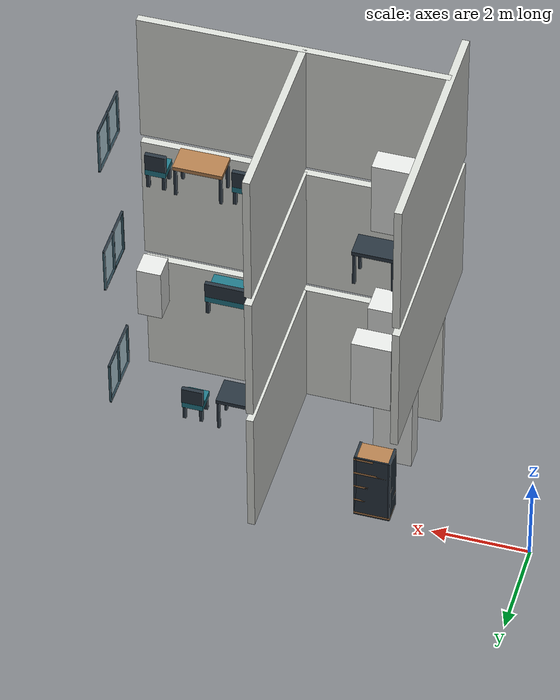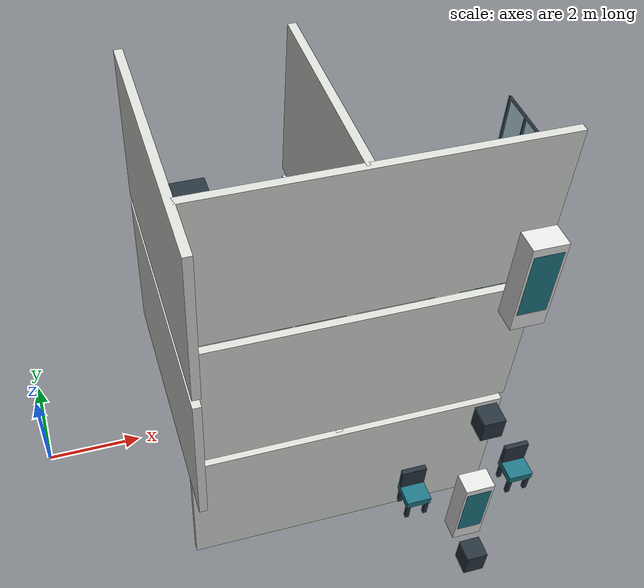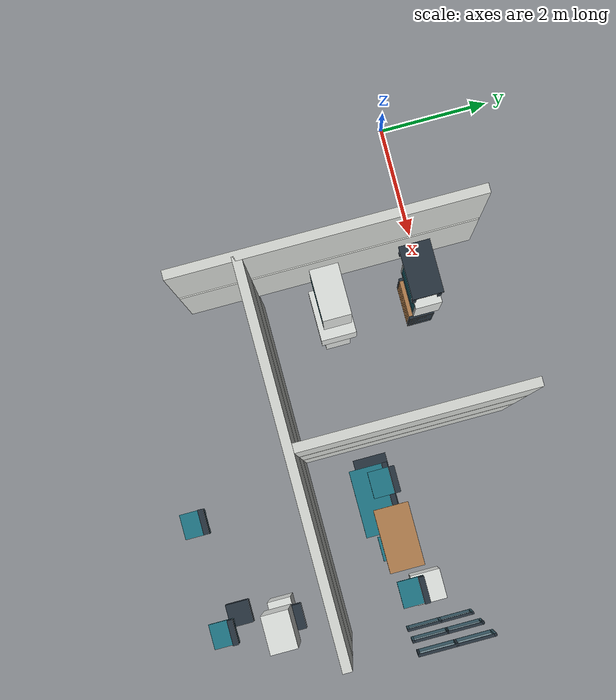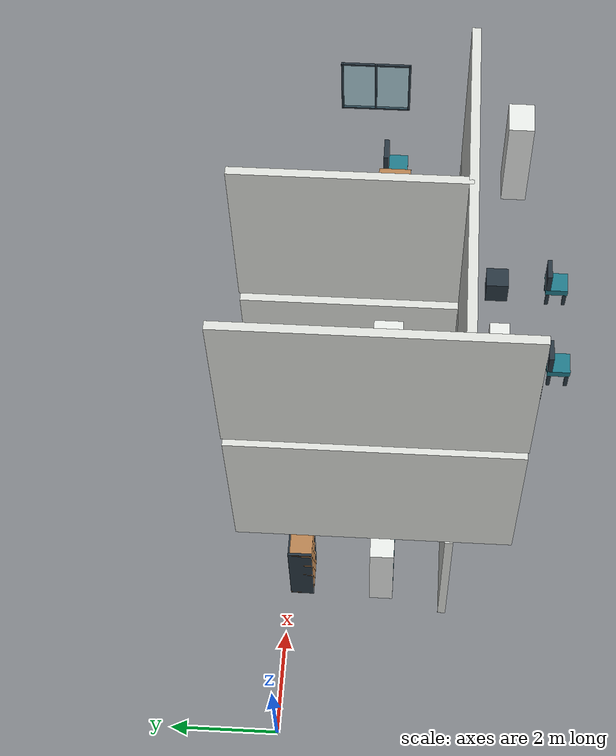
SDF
<sdf version="1.6">
 <world name="three_floor">
  <model name="f1_wall_019">
   <static>true</static>
   <pose>5.7 -3 1.5 0 0 0</pose>
   <link name="f1_wall_019_link">
    <collision name="f1_wall_019_collision"><geometry><box><size>6.2 0.15 3</size></box></geometry></collision>
    <visual name="f1_wall_019_visual">
     <geometry><box><size>6.2 0.15 3</size></box></geometry>
     <material><ambient>.84 .85 .83 1</ambient><diffuse>.84 .85 .83 1</diffuse></material>
    </visual>
   </link>
  </model>
  <model name="f1_wall_021">
   <static>true</static>
   <pose>5.5 -1.1 1.5 0 0 0</pose>
   <link name="f1_wall_021_link">
    <collision name="f1_wall_021_collision"><geometry><box><size>0.15 3.8 3</size></box></geometry></collision>
    <visual name="f1_wall_021_visual">
     <geometry><box><size>0.15 3.8 3</size></box></geometry>
     <material><ambient>.84 .85 .83 1</ambient><diffuse>.84 .85 .83 1</diffuse></material>
    </visual>
   </link>
  </model>
  <model name="f2_wall_017">
   <static>true</static>
   <pose>2.6 -1.65 4.7 0 0 0</pose>
   <link name="f2_wall_017_link">
    <collision name="f2_wall_017_collision"><geometry><box><size>0.15 4.9 3</size></box></geometry></collision>
    <visual name="f2_wall_017_visual">
     <geometry><box><size>0.15 4.9 3</size></box></geometry>
     <material><ambient>.84 .85 .83 1</ambient><diffuse>.84 .85 .83 1</diffuse></material>
    </visual>
   </link>
  </model>
  <model name="f2_wall_019">
   <static>true</static>
   <pose>5.7 -3 4.7 0 0 0</pose>
   <link name="f2_wall_019_link">
    <collision name="f2_wall_019_collision"><geometry><box><size>6.2 0.15 3</size></box></geometry></collision>
    <visual name="f2_wall_019_visual">
     <geometry><box><size>6.2 0.15 3</size></box></geometry>
     <material><ambient>.84 .85 .83 1</ambient><diffuse>.84 .85 .83 1</diffuse></material>
    </visual>
   </link>
  </model>
  <model name="f2_wall_021">
   <static>true</static>
   <pose>5.5 -1.1 4.7 0 0 0</pose>
   <link name="f2_wall_021_link">
    <collision name="f2_wall_021_collision"><geometry><box><size>0.15 3.8 3</size></box></geometry></collision>
    <visual name="f2_wall_021_visual">
     <geometry><box><size>0.15 3.8 3</size></box></geometry>
     <material><ambient>.84 .85 .83 1</ambient><diffuse>.84 .85 .83 1</diffuse></material>
    </visual>
   </link>
  </model>
  <model name="f3_wall_017">
   <static>true</static>
   <pose>2.6 -1.65 7.9 0 0 0</pose>
   <link name="f3_wall_017_link">
    <collision name="f3_wall_017_collision"><geometry><box><size>0.15 4.9 3</size></box></geometry></collision>
    <visual name="f3_wall_017_visual">
     <geometry><box><size>0.15 4.9 3</size></box></geometry>
     <material><ambient>.84 .85 .83 1</ambient><diffuse>.84 .85 .83 1</diffuse></material>
    </visual>
   </link>
  </model>
  <model name="f3_wall_019">
   <static>true</static>
   <pose>5.7 -3 7.9 0 0 0</pose>
   <link name="f3_wall_019_link">
    <collision name="f3_wall_019_collision"><geometry><box><size>6.2 0.15 3</size></box></geometry></collision>
    <visual name="f3_wall_019_visual">
     <geometry><box><size>6.2 0.15 3</size></box></geometry>
     <material><ambient>.84 .85 .83 1</ambient><diffuse>.84 .85 .83 1</diffuse></material>
    </visual>
   </link>
  </model>
  <model name="f3_wall_021">
   <static>true</static>
   <pose>5.5 -1.1 7.9 0 0 0</pose>
   <link name="f3_wall_021_link">
    <collision name="f3_wall_021_collision"><geometry><box><size>0.15 3.8 3</size></box></geometry></collision>
    <visual name="f3_wall_021_visual">
     <geometry><box><size>0.15 3.8 3</size></box></geometry>
     <material><ambient>.84 .85 .83 1</ambient><diffuse>.84 .85 .83 1</diffuse></material>
    </visual>
   </link>
  </model>
  <model name="f1_s2_window_04">
   <static>true</static>
   <pose>8.9 -1.35 1.475 0 0 0</pose>
   <link name="f1_s2_window_04_link">
    <collision name="f1_s2_window_04_link_glass_collision">
     <geometry><box><size>0.045 1.2 1.05</size></box></geometry>
    </collision>
    <visual name="f1_s2_window_04_link_glass_visual">
     <geometry><box><size>0.045 1.2 1.05</size></box></geometry>
     <material><ambient>0.44 0.76 0.83 1</ambient><diffuse>0.44 0.76 0.83 1</diffuse></material>
     <transparency>0.65</transparency>
    </visual>
    <collision name="f1_s2_window_04_link_mullion_-0.58_collision">
     <pose>0 -0.58 0 0 0 0</pose>
     <geometry><box><size>0.045 0.035 1.05</size></box></geometry>
    </collision>
    <visual name="f1_s2_window_04_link_mullion_-0.58_visual">
     <pose>0 -0.58 0 0 0 0</pose>
     <geometry><box><size>0.045 0.035 1.05</size></box></geometry>
     <material><ambient>0.15 0.2 0.24 1</ambient><diffuse>0.15 0.2 0.24 1</diffuse></material>
    </visual>
    <collision name="f1_s2_window_04_link_mullion_0.58_collision">
     <pose>0 0.58 0 0 0 0</pose>
     <geometry><box><size>0.045 0.035 1.05</size></box></geometry>
    </collision>
    <visual name="f1_s2_window_04_link_mullion_0.58_visual">
     <pose>0 0.58 0 0 0 0</pose>
     <geometry><box><size>0.045 0.035 1.05</size></box></geometry>
     <material><ambient>0.15 0.2 0.24 1</ambient><diffuse>0.15 0.2 0.24 1</diffuse></material>
    </visual>
    <collision name="f1_s2_window_04_link_mullion_0_collision">
     <geometry><box><size>0.045 0.035 1.05</size></box></geometry>
    </collision>
    <visual name="f1_s2_window_04_link_mullion_0_visual">
     <geometry><box><size>0.045 0.035 1.05</size></box></geometry>
     <material><ambient>0.15 0.2 0.24 1</ambient><diffuse>0.15 0.2 0.24 1</diffuse></material>
    </visual>
    <collision name="f1_s2_window_04_link_frame_-0.51_collision">
     <pose>0 0 -0.51 0 0 0</pose>
     <geometry><box><size>0.045 1.2 0.03</size></box></geometry>
    </collision>
    <visual name="f1_s2_window_04_link_frame_-0.51_visual">
     <pose>0 0 -0.51 0 0 0</pose>
     <geometry><box><size>0.045 1.2 0.03</size></box></geometry>
     <material><ambient>0.15 0.2 0.24 1</ambient><diffuse>0.15 0.2 0.24 1</diffuse></material>
    </visual>
    <collision name="f1_s2_window_04_link_frame_0.51_collision">
     <pose>0 0 0.51 0 0 0</pose>
     <geometry><box><size>0.045 1.2 0.03</size></box></geometry>
    </collision>
    <visual name="f1_s2_window_04_link_frame_0.51_visual">
     <pose>0 0 0.51 0 0 0</pose>
     <geometry><box><size>0.045 1.2 0.03</size></box></geometry>
     <material><ambient>0.15 0.2 0.24 1</ambient><diffuse>0.15 0.2 0.24 1</diffuse></material>
    </visual>
   </link>
  </model>
  <model name="f2_s2_window_15">
   <static>true</static>
   <pose>8.9 -1.35 4.675 0 0 0</pose>
   <link name="f2_s2_window_15_link">
    <collision name="f2_s2_window_15_link_glass_collision">
     <geometry><box><size>0.045 1.2 1.05</size></box></geometry>
    </collision>
    <visual name="f2_s2_window_15_link_glass_visual">
     <geometry><box><size>0.045 1.2 1.05</size></box></geometry>
     <material><ambient>0.44 0.76 0.83 1</ambient><diffuse>0.44 0.76 0.83 1</diffuse></material>
     <transparency>0.65</transparency>
    </visual>
    <collision name="f2_s2_window_15_link_mullion_-0.58_collision">
     <pose>0 -0.58 0 0 0 0</pose>
     <geometry><box><size>0.045 0.035 1.05</size></box></geometry>
    </collision>
    <visual name="f2_s2_window_15_link_mullion_-0.58_visual">
     <pose>0 -0.58 0 0 0 0</pose>
     <geometry><box><size>0.045 0.035 1.05</size></box></geometry>
     <material><ambient>0.15 0.2 0.24 1</ambient><diffuse>0.15 0.2 0.24 1</diffuse></material>
    </visual>
    <collision name="f2_s2_window_15_link_mullion_0.58_collision">
     <pose>0 0.58 0 0 0 0</pose>
     <geometry><box><size>0.045 0.035 1.05</size></box></geometry>
    </collision>
    <visual name="f2_s2_window_15_link_mullion_0.58_visual">
     <pose>0 0.58 0 0 0 0</pose>
     <geometry><box><size>0.045 0.035 1.05</size></box></geometry>
     <material><ambient>0.15 0.2 0.24 1</ambient><diffuse>0.15 0.2 0.24 1</diffuse></material>
    </visual>
    <collision name="f2_s2_window_15_link_mullion_0_collision">
     <geometry><box><size>0.045 0.035 1.05</size></box></geometry>
    </collision>
    <visual name="f2_s2_window_15_link_mullion_0_visual">
     <geometry><box><size>0.045 0.035 1.05</size></box></geometry>
     <material><ambient>0.15 0.2 0.24 1</ambient><diffuse>0.15 0.2 0.24 1</diffuse></material>
    </visual>
    <collision name="f2_s2_window_15_link_frame_-0.51_collision">
     <pose>0 0 -0.51 0 0 0</pose>
     <geometry><box><size>0.045 1.2 0.03</size></box></geometry>
    </collision>
    <visual name="f2_s2_window_15_link_frame_-0.51_visual">
     <pose>0 0 -0.51 0 0 0</pose>
     <geometry><box><size>0.045 1.2 0.03</size></box></geometry>
     <material><ambient>0.15 0.2 0.24 1</ambient><diffuse>0.15 0.2 0.24 1</diffuse></material>
    </visual>
    <collision name="f2_s2_window_15_link_frame_0.51_collision">
     <pose>0 0 0.51 0 0 0</pose>
     <geometry><box><size>0.045 1.2 0.03</size></box></geometry>
    </collision>
    <visual name="f2_s2_window_15_link_frame_0.51_visual">
     <pose>0 0 0.51 0 0 0</pose>
     <geometry><box><size>0.045 1.2 0.03</size></box></geometry>
     <material><ambient>0.15 0.2 0.24 1</ambient><diffuse>0.15 0.2 0.24 1</diffuse></material>
    </visual>
   </link>
  </model>
  <model name="f3_s2_window_27">
   <static>true</static>
   <pose>8.9 -1.35 7.875 0 0 0</pose>
   <link name="f3_s2_window_27_link">
    <collision name="f3_s2_window_27_link_glass_collision">
     <geometry><box><size>0.045 1.2 1.05</size></box></geometry>
    </collision>
    <visual name="f3_s2_window_27_link_glass_visual">
     <geometry><box><size>0.045 1.2 1.05</size></box></geometry>
     <material><ambient>0.44 0.76 0.83 1</ambient><diffuse>0.44 0.76 0.83 1</diffuse></material>
     <transparency>0.65</transparency>
    </visual>
    <collision name="f3_s2_window_27_link_mullion_-0.58_collision">
     <pose>0 -0.58 0 0 0 0</pose>
     <geometry><box><size>0.045 0.035 1.05</size></box></geometry>
    </collision>
    <visual name="f3_s2_window_27_link_mullion_-0.58_visual">
     <pose>0 -0.58 0 0 0 0</pose>
     <geometry><box><size>0.045 0.035 1.05</size></box></geometry>
     <material><ambient>0.15 0.2 0.24 1</ambient><diffuse>0.15 0.2 0.24 1</diffuse></material>
    </visual>
    <collision name="f3_s2_window_27_link_mullion_0.58_collision">
     <pose>0 0.58 0 0 0 0</pose>
     <geometry><box><size>0.045 0.035 1.05</size></box></geometry>
    </collision>
    <visual name="f3_s2_window_27_link_mullion_0.58_visual">
     <pose>0 0.58 0 0 0 0</pose>
     <geometry><box><size>0.045 0.035 1.05</size></box></geometry>
     <material><ambient>0.15 0.2 0.24 1</ambient><diffuse>0.15 0.2 0.24 1</diffuse></material>
    </visual>
    <collision name="f3_s2_window_27_link_mullion_0_collision">
     <geometry><box><size>0.045 0.035 1.05</size></box></geometry>
    </collision>
    <visual name="f3_s2_window_27_link_mullion_0_visual">
     <geometry><box><size>0.045 0.035 1.05</size></box></geometry>
     <material><ambient>0.15 0.2 0.24 1</ambient><diffuse>0.15 0.2 0.24 1</diffuse></material>
    </visual>
    <collision name="f3_s2_window_27_link_frame_-0.51_collision">
     <pose>0 0 -0.51 0 0 0</pose>
     <geometry><box><size>0.045 1.2 0.03</size></box></geometry>
    </collision>
    <visual name="f3_s2_window_27_link_frame_-0.51_visual">
     <pose>0 0 -0.51 0 0 0</pose>
     <geometry><box><size>0.045 1.2 0.03</size></box></geometry>
     <material><ambient>0.15 0.2 0.24 1</ambient><diffuse>0.15 0.2 0.24 1</diffuse></material>
    </visual>
    <collision name="f3_s2_window_27_link_frame_0.51_collision">
     <pose>0 0 0.51 0 0 0</pose>
     <geometry><box><size>0.045 1.2 0.03</size></box></geometry>
    </collision>
    <visual name="f3_s2_window_27_link_frame_0.51_visual">
     <pose>0 0 0.51 0 0 0</pose>
     <geometry><box><size>0.045 1.2 0.03</size></box></geometry>
     <material><ambient>0.15 0.2 0.24 1</ambient><diffuse>0.15 0.2 0.24 1</diffuse></material>
    </visual>
   </link>
  </model>
  <model name="f1_s2_furniture_10_cabinet">
   <static>true</static>
   <pose>3.25 -1.8 0 0 0 0</pose>
   <link name="f1_s2_furniture_10_cabinet_link">
    <collision name="f1_s2_furniture_10_cabinet_link_body_collision">
     <pose>0 0 0.9 0 0 0</pose>
     <geometry><box><size>0.8 0.45 1.8</size></box></geometry>
    </collision>
    <visual name="f1_s2_furniture_10_cabinet_link_body_visual">
     <pose>0 0 0.9 0 0 0</pose>
     <geometry><box><size>0.8 0.45 1.8</size></box></geometry>
     <material><ambient>0.88 0.89 0.88 1</ambient><diffuse>0.88 0.89 0.88 1</diffuse></material>
    </visual>
    <collision name="f1_s2_furniture_10_cabinet_link_front_inset_collision">
     <pose>0 -0.226 0.99 0 0 0</pose>
     <geometry><box><size>0.68 0.002 1.296</size></box></geometry>
    </collision>
    <visual name="f1_s2_furniture_10_cabinet_link_front_inset_visual">
     <pose>0 -0.226 0.99 0 0 0</pose>
     <geometry><box><size>0.68 0.002 1.296</size></box></geometry>
     <material><ambient>0.12 0.46 0.52 1</ambient><diffuse>0.12 0.46 0.52 1</diffuse></material>
    </visual>
   </link>
  </model>
  <model name="f1_s2_furniture_11_shelf">
   <static>true</static>
   <pose>3.25 -0.25 0 0 0 0</pose>
   <link name="f1_s2_furniture_11_shelf_link">
    <collision name="f1_s2_furniture_11_shelf_link_upright-0.35_collision">
     <pose>-0.35 0 0.825 0 0 0</pose>
     <geometry><box><size>0.05 0.45 1.65</size></box></geometry>
    </collision>
    <visual name="f1_s2_furniture_11_shelf_link_upright-0.35_visual">
     <pose>-0.35 0 0.825 0 0 0</pose>
     <geometry><box><size>0.05 0.45 1.65</size></box></geometry>
     <material><ambient>0.15 0.2 0.24 1</ambient><diffuse>0.15 0.2 0.24 1</diffuse></material>
    </visual>
    <collision name="f1_s2_furniture_11_shelf_link_upright0.35_collision">
     <pose>0.35 0 0.825 0 0 0</pose>
     <geometry><box><size>0.05 0.45 1.65</size></box></geometry>
    </collision>
    <visual name="f1_s2_furniture_11_shelf_link_upright0.35_visual">
     <pose>0.35 0 0.825 0 0 0</pose>
     <geometry><box><size>0.05 0.45 1.65</size></box></geometry>
     <material><ambient>0.15 0.2 0.24 1</ambient><diffuse>0.15 0.2 0.24 1</diffuse></material>
    </visual>
    <collision name="f1_s2_furniture_11_shelf_link_shelf0_collision">
     <pose>0 0 0.05 0 0 0</pose>
     <geometry><box><size>0.75 0.45 0.05</size></box></geometry>
    </collision>
    <visual name="f1_s2_furniture_11_shelf_link_shelf0_visual">
     <pose>0 0 0.05 0 0 0</pose>
     <geometry><box><size>0.75 0.45 0.05</size></box></geometry>
     <material><ambient>0.69 0.49 0.3 1</ambient><diffuse>0.69 0.49 0.3 1</diffuse></material>
    </visual>
    <collision name="f1_s2_furniture_11_shelf_link_shelf1_collision">
     <pose>0 0 0.4375 0 0 0</pose>
     <geometry><box><size>0.75 0.45 0.05</size></box></geometry>
    </collision>
    <visual name="f1_s2_furniture_11_shelf_link_shelf1_visual">
     <pose>0 0 0.4375 0 0 0</pose>
     <geometry><box><size>0.75 0.45 0.05</size></box></geometry>
     <material><ambient>0.69 0.49 0.3 1</ambient><diffuse>0.69 0.49 0.3 1</diffuse></material>
    </visual>
    <collision name="f1_s2_furniture_11_shelf_link_shelf2_collision">
     <pose>0 0 0.825 0 0 0</pose>
     <geometry><box><size>0.75 0.45 0.05</size></box></geometry>
    </collision>
    <visual name="f1_s2_furniture_11_shelf_link_shelf2_visual">
     <pose>0 0 0.825 0 0 0</pose>
     <geometry><box><size>0.75 0.45 0.05</size></box></geometry>
     <material><ambient>0.69 0.49 0.3 1</ambient><diffuse>0.69 0.49 0.3 1</diffuse></material>
    </visual>
    <collision name="f1_s2_furniture_11_shelf_link_shelf3_collision">
     <pose>0 0 1.2125 0 0 0</pose>
     <geometry><box><size>0.75 0.45 0.05</size></box></geometry>
    </collision>
    <visual name="f1_s2_furniture_11_shelf_link_shelf3_visual">
     <pose>0 0 1.2125 0 0 0</pose>
     <geometry><box><size>0.75 0.45 0.05</size></box></geometry>
     <material><ambient>0.69 0.49 0.3 1</ambient><diffuse>0.69 0.49 0.3 1</diffuse></material>
    </visual>
    <collision name="f1_s2_furniture_11_shelf_link_shelf4_collision">
     <pose>0 0 1.6 0 0 0</pose>
     <geometry><box><size>0.75 0.45 0.05</size></box></geometry>
    </collision>
    <visual name="f1_s2_furniture_11_shelf_link_shelf4_visual">
     <pose>0 0 1.6 0 0 0</pose>
     <geometry><box><size>0.75 0.45 0.05</size></box></geometry>
     <material><ambient>0.69 0.49 0.3 1</ambient><diffuse>0.69 0.49 0.3 1</diffuse></material>
    </visual>
    <collision name="f1_s2_furniture_11_shelf_link_back_collision">
     <pose>0 0.21 0.825 0 0 0</pose>
     <geometry><box><size>0.75 0.03 1.65</size></box></geometry>
    </collision>
    <visual name="f1_s2_furniture_11_shelf_link_back_visual">
     <pose>0 0.21 0.825 0 0 0</pose>
     <geometry><box><size>0.75 0.03 1.65</size></box></geometry>
     <material><ambient>0.15 0.2 0.24 1</ambient><diffuse>0.15 0.2 0.24 1</diffuse></material>
    </visual>
   </link>
  </model>
  <model name="f1_s2_furniture_12_workbench">
   <static>true</static>
   <pose>6.35 -1.8 0 0 0 0</pose>
   <link name="f1_s2_furniture_12_workbench_link">
    <collision name="f1_s2_furniture_12_workbench_link_top_collision">
     <pose>0 0 0.775 0 0 0</pose>
     <geometry><box><size>1.15 0.6 0.09</size></box></geometry>
    </collision>
    <visual name="f1_s2_furniture_12_workbench_link_top_visual">
     <pose>0 0 0.775 0 0 0</pose>
     <geometry><box><size>1.15 0.6 0.09</size></box></geometry>
     <material><ambient>0.15 0.2 0.24 1</ambient><diffuse>0.15 0.2 0.24 1</diffuse></material>
    </visual>
    <collision name="f1_s2_furniture_12_workbench_link_leg_-0.5299999999999999_-0.255_collision">
     <pose>-0.53 -0.255 0.365 0 0 0</pose>
     <geometry><box><size>0.06 0.06 0.73</size></box></geometry>
    </collision>
    <visual name="f1_s2_furniture_12_workbench_link_leg_-0.5299999999999999_-0.255_visual">
     <pose>-0.53 -0.255 0.365 0 0 0</pose>
     <geometry><box><size>0.06 0.06 0.73</size></box></geometry>
     <material><ambient>0.15 0.2 0.24 1</ambient><diffuse>0.15 0.2 0.24 1</diffuse></material>
    </visual>
    <collision name="f1_s2_furniture_12_workbench_link_leg_-0.5299999999999999_0.255_collision">
     <pose>-0.53 0.255 0.365 0 0 0</pose>
     <geometry><box><size>0.06 0.06 0.73</size></box></geometry>
    </collision>
    <visual name="f1_s2_furniture_12_workbench_link_leg_-0.5299999999999999_0.255_visual">
     <pose>-0.53 0.255 0.365 0 0 0</pose>
     <geometry><box><size>0.06 0.06 0.73</size></box></geometry>
     <material><ambient>0.15 0.2 0.24 1</ambient><diffuse>0.15 0.2 0.24 1</diffuse></material>
    </visual>
    <collision name="f1_s2_furniture_12_workbench_link_leg_0.5299999999999999_-0.255_collision">
     <pose>0.53 -0.255 0.365 0 0 0</pose>
     <geometry><box><size>0.06 0.06 0.73</size></box></geometry>
    </collision>
    <visual name="f1_s2_furniture_12_workbench_link_leg_0.5299999999999999_-0.255_visual">
     <pose>0.53 -0.255 0.365 0 0 0</pose>
     <geometry><box><size>0.06 0.06 0.73</size></box></geometry>
     <material><ambient>0.15 0.2 0.24 1</ambient><diffuse>0.15 0.2 0.24 1</diffuse></material>
    </visual>
    <collision name="f1_s2_furniture_12_workbench_link_leg_0.5299999999999999_0.255_collision">
     <pose>0.53 0.255 0.365 0 0 0</pose>
     <geometry><box><size>0.06 0.06 0.73</size></box></geometry>
    </collision>
    <visual name="f1_s2_furniture_12_workbench_link_leg_0.5299999999999999_0.255_visual">
     <pose>0.53 0.255 0.365 0 0 0</pose>
     <geometry><box><size>0.06 0.06 0.73</size></box></geometry>
     <material><ambient>0.15 0.2 0.24 1</ambient><diffuse>0.15 0.2 0.24 1</diffuse></material>
    </visual>
   </link>
  </model>
  <model name="f1_s2_furniture_13_seat">
   <static>true</static>
   <pose>7.45 -1.8 0 0 0 0</pose>
   <link name="f1_s2_furniture_13_seat_link">
    <collision name="f1_s2_furniture_13_seat_link_seat_collision">
     <pose>0 0 0.4 0 0 0</pose>
     <geometry><box><size>0.45 0.45 0.14</size></box></geometry>
    </collision>
    <visual name="f1_s2_furniture_13_seat_link_seat_visual">
     <pose>0 0 0.4 0 0 0</pose>
     <geometry><box><size>0.45 0.45 0.14</size></box></geometry>
     <material><ambient>0.12 0.46 0.52 1</ambient><diffuse>0.12 0.46 0.52 1</diffuse></material>
    </visual>
    <collision name="f1_s2_furniture_13_seat_link_back_collision">
     <pose>0 0.18 0.66 0 0 0</pose>
     <geometry><box><size>0.45 0.09 0.38</size></box></geometry>
    </collision>
    <visual name="f1_s2_furniture_13_seat_link_back_visual">
     <pose>0 0.18 0.66 0 0 0</pose>
     <geometry><box><size>0.45 0.09 0.38</size></box></geometry>
     <material><ambient>0.15 0.2 0.24 1</ambient><diffuse>0.15 0.2 0.24 1</diffuse></material>
    </visual>
    <collision name="f1_s2_furniture_13_seat_link_leg_-0.175_-0.175_collision">
     <pose>-0.175 -0.175 0.165 0 0 0</pose>
     <geometry><box><size>0.07 0.07 0.33</size></box></geometry>
    </collision>
    <visual name="f1_s2_furniture_13_seat_link_leg_-0.175_-0.175_visual">
     <pose>-0.175 -0.175 0.165 0 0 0</pose>
     <geometry><box><size>0.07 0.07 0.33</size></box></geometry>
     <material><ambient>0.15 0.2 0.24 1</ambient><diffuse>0.15 0.2 0.24 1</diffuse></material>
    </visual>
    <collision name="f1_s2_furniture_13_seat_link_leg_-0.175_0.175_collision">
     <pose>-0.175 0.175 0.165 0 0 0</pose>
     <geometry><box><size>0.07 0.07 0.33</size></box></geometry>
    </collision>
    <visual name="f1_s2_furniture_13_seat_link_leg_-0.175_0.175_visual">
     <pose>-0.175 0.175 0.165 0 0 0</pose>
     <geometry><box><size>0.07 0.07 0.33</size></box></geometry>
     <material><ambient>0.15 0.2 0.24 1</ambient><diffuse>0.15 0.2 0.24 1</diffuse></material>
    </visual>
    <collision name="f1_s2_furniture_13_seat_link_leg_0.175_-0.175_collision">
     <pose>0.175 -0.175 0.165 0 0 0</pose>
     <geometry><box><size>0.07 0.07 0.33</size></box></geometry>
    </collision>
    <visual name="f1_s2_furniture_13_seat_link_leg_0.175_-0.175_visual">
     <pose>0.175 -0.175 0.165 0 0 0</pose>
     <geometry><box><size>0.07 0.07 0.33</size></box></geometry>
     <material><ambient>0.15 0.2 0.24 1</ambient><diffuse>0.15 0.2 0.24 1</diffuse></material>
    </visual>
    <collision name="f1_s2_furniture_13_seat_link_leg_0.175_0.175_collision">
     <pose>0.175 0.175 0.165 0 0 0</pose>
     <geometry><box><size>0.07 0.07 0.33</size></box></geometry>
    </collision>
    <visual name="f1_s2_furniture_13_seat_link_leg_0.175_0.175_visual">
     <pose>0.175 0.175 0.165 0 0 0</pose>
     <geometry><box><size>0.07 0.07 0.33</size></box></geometry>
     <material><ambient>0.15 0.2 0.24 1</ambient><diffuse>0.15 0.2 0.24 1</diffuse></material>
    </visual>
   </link>
  </model>
  <model name="f1_s2_furniture_16_cabinet">
   <static>true</static>
   <pose>8.1 -4 0 0 0 0</pose>
   <link name="f1_s2_furniture_16_cabinet_link">
    <collision name="f1_s2_furniture_16_cabinet_link_body_collision">
     <pose>0 0 0.875 0 0 0</pose>
     <geometry><box><size>0.6 0.42 1.75</size></box></geometry>
    </collision>
    <visual name="f1_s2_furniture_16_cabinet_link_body_visual">
     <pose>0 0 0.875 0 0 0</pose>
     <geometry><box><size>0.6 0.42 1.75</size></box></geometry>
     <material><ambient>0.88 0.89 0.88 1</ambient><diffuse>0.88 0.89 0.88 1</diffuse></material>
    </visual>
    <collision name="f1_s2_furniture_16_cabinet_link_front_inset_collision">
     <pose>0 -0.211 0.9625 0 0 0</pose>
     <geometry><box><size>0.51 0.002 1.26</size></box></geometry>
    </collision>
    <visual name="f1_s2_furniture_16_cabinet_link_front_inset_visual">
     <pose>0 -0.211 0.9625 0 0 0</pose>
     <geometry><box><size>0.51 0.002 1.26</size></box></geometry>
     <material><ambient>0.12 0.46 0.52 1</ambient><diffuse>0.12 0.46 0.52 1</diffuse></material>
    </visual>
   </link>
  </model>
  <model name="f1_s2_furniture_22_box">
   <static>true</static>
   <pose>7.9 -4.8 0 0 0 0</pose>
   <link name="f1_s2_furniture_22_box_link">
    <collision name="f1_s2_furniture_22_box_link_body_collision">
     <pose>0 0 0.275 0 0 0</pose>
     <geometry><box><size>0.42 0.42 0.55</size></box></geometry>
    </collision>
    <visual name="f1_s2_furniture_22_box_link_body_visual">
     <pose>0 0 0.275 0 0 0</pose>
     <geometry><box><size>0.42 0.42 0.55</size></box></geometry>
     <material><ambient>0.15 0.2 0.24 1</ambient><diffuse>0.15 0.2 0.24 1</diffuse></material>
    </visual>
   </link>
  </model>
  <model name="f2_s2_furniture_36_printer">
   <static>true</static>
   <pose>3.35 -1.8 3.2 0 0 0</pose>
   <link name="f2_s2_furniture_36_printer_link">
    <collision name="f2_s2_furniture_36_printer_link_body_collision">
     <pose>0 0 0.575 0 0 0</pose>
     <geometry><box><size>0.85 0.6 1.15</size></box></geometry>
    </collision>
    <visual name="f2_s2_furniture_36_printer_link_body_visual">
     <pose>0 0 0.575 0 0 0</pose>
     <geometry><box><size>0.85 0.6 1.15</size></box></geometry>
     <material><ambient>0.88 0.89 0.88 1</ambient><diffuse>0.88 0.89 0.88 1</diffuse></material>
    </visual>
   </link>
  </model>
  <model name="f2_s2_furniture_37_cabinet">
   <static>true</static>
   <pose>3.3 -0.25 3.2 0 0 0</pose>
   <link name="f2_s2_furniture_37_cabinet_link">
    <collision name="f2_s2_furniture_37_cabinet_link_body_collision">
     <pose>0 0 0.825 0 0 0</pose>
     <geometry><box><size>0.8 0.45 1.65</size></box></geometry>
    </collision>
    <visual name="f2_s2_furniture_37_cabinet_link_body_visual">
     <pose>0 0 0.825 0 0 0</pose>
     <geometry><box><size>0.8 0.45 1.65</size></box></geometry>
     <material><ambient>0.88 0.89 0.88 1</ambient><diffuse>0.88 0.89 0.88 1</diffuse></material>
    </visual>
    <collision name="f2_s2_furniture_37_cabinet_link_front_inset_collision">
     <pose>0 -0.226 0.9075 0 0 0</pose>
     <geometry><box><size>0.68 0.002 1.188</size></box></geometry>
    </collision>
    <visual name="f2_s2_furniture_37_cabinet_link_front_inset_visual">
     <pose>0 -0.226 0.9075 0 0 0</pose>
     <geometry><box><size>0.68 0.002 1.188</size></box></geometry>
     <material><ambient>0.12 0.46 0.52 1</ambient><diffuse>0.12 0.46 0.52 1</diffuse></material>
    </visual>
   </link>
  </model>
  <model name="f2_s2_furniture_38_sofa">
   <static>true</static>
   <pose>6.55 -1.9 3.2 0 0 0</pose>
   <link name="f2_s2_furniture_38_sofa_link">
    <collision name="f2_s2_furniture_38_sofa_link_seat_collision">
     <pose>0 0 0.4 0 0 0</pose>
     <geometry><box><size>1.15 0.65 0.14</size></box></geometry>
    </collision>
    <visual name="f2_s2_furniture_38_sofa_link_seat_visual">
     <pose>0 0 0.4 0 0 0</pose>
     <geometry><box><size>1.15 0.65 0.14</size></box></geometry>
     <material><ambient>0.12 0.46 0.52 1</ambient><diffuse>0.12 0.46 0.52 1</diffuse></material>
    </visual>
    <collision name="f2_s2_furniture_38_sofa_link_back_collision">
     <pose>0 0.28 0.645 0 0 0</pose>
     <geometry><box><size>1.15 0.09 0.35</size></box></geometry>
    </collision>
    <visual name="f2_s2_furniture_38_sofa_link_back_visual">
     <pose>0 0.28 0.645 0 0 0</pose>
     <geometry><box><size>1.15 0.09 0.35</size></box></geometry>
     <material><ambient>0.15 0.2 0.24 1</ambient><diffuse>0.15 0.2 0.24 1</diffuse></material>
    </visual>
    <collision name="f2_s2_furniture_38_sofa_link_leg_-0.5249999999999999_-0.275_collision">
     <pose>-0.525 -0.275 0.165 0 0 0</pose>
     <geometry><box><size>0.07 0.07 0.33</size></box></geometry>
    </collision>
    <visual name="f2_s2_furniture_38_sofa_link_leg_-0.5249999999999999_-0.275_visual">
     <pose>-0.525 -0.275 0.165 0 0 0</pose>
     <geometry><box><size>0.07 0.07 0.33</size></box></geometry>
     <material><ambient>0.15 0.2 0.24 1</ambient><diffuse>0.15 0.2 0.24 1</diffuse></material>
    </visual>
    <collision name="f2_s2_furniture_38_sofa_link_leg_-0.5249999999999999_0.275_collision">
     <pose>-0.525 0.275 0.165 0 0 0</pose>
     <geometry><box><size>0.07 0.07 0.33</size></box></geometry>
    </collision>
    <visual name="f2_s2_furniture_38_sofa_link_leg_-0.5249999999999999_0.275_visual">
     <pose>-0.525 0.275 0.165 0 0 0</pose>
     <geometry><box><size>0.07 0.07 0.33</size></box></geometry>
     <material><ambient>0.15 0.2 0.24 1</ambient><diffuse>0.15 0.2 0.24 1</diffuse></material>
    </visual>
    <collision name="f2_s2_furniture_38_sofa_link_leg_0.5249999999999999_-0.275_collision">
     <pose>0.525 -0.275 0.165 0 0 0</pose>
     <geometry><box><size>0.07 0.07 0.33</size></box></geometry>
    </collision>
    <visual name="f2_s2_furniture_38_sofa_link_leg_0.5249999999999999_-0.275_visual">
     <pose>0.525 -0.275 0.165 0 0 0</pose>
     <geometry><box><size>0.07 0.07 0.33</size></box></geometry>
     <material><ambient>0.15 0.2 0.24 1</ambient><diffuse>0.15 0.2 0.24 1</diffuse></material>
    </visual>
    <collision name="f2_s2_furniture_38_sofa_link_leg_0.5249999999999999_0.275_collision">
     <pose>0.525 0.275 0.165 0 0 0</pose>
     <geometry><box><size>0.07 0.07 0.33</size></box></geometry>
    </collision>
    <visual name="f2_s2_furniture_38_sofa_link_leg_0.5249999999999999_0.275_visual">
     <pose>0.525 0.275 0.165 0 0 0</pose>
     <geometry><box><size>0.07 0.07 0.33</size></box></geometry>
     <material><ambient>0.15 0.2 0.24 1</ambient><diffuse>0.15 0.2 0.24 1</diffuse></material>
    </visual>
   </link>
  </model>
  <model name="f2_s2_furniture_39_water">
   <static>true</static>
   <pose>8.15 -1.45 3.2 0 0 0</pose>
   <link name="f2_s2_furniture_39_water_link">
    <collision name="f2_s2_furniture_39_water_link_body_collision">
     <pose>0 0 0.6 0 0 0</pose>
     <geometry><box><size>0.5 0.5 1.2</size></box></geometry>
    </collision>
    <visual name="f2_s2_furniture_39_water_link_body_visual">
     <pose>0 0 0.6 0 0 0</pose>
     <geometry><box><size>0.5 0.5 1.2</size></box></geometry>
     <material><ambient>0.88 0.89 0.88 1</ambient><diffuse>0.88 0.89 0.88 1</diffuse></material>
    </visual>
   </link>
  </model>
  <model name="f2_s2_furniture_43_seat">
   <static>true</static>
   <pose>6.15 -4.95 3.2 0 0 0</pose>
   <link name="f2_s2_furniture_43_seat_link">
    <collision name="f2_s2_furniture_43_seat_link_seat_collision">
     <pose>0 0 0.4 0 0 0</pose>
     <geometry><box><size>0.43 0.43 0.14</size></box></geometry>
    </collision>
    <visual name="f2_s2_furniture_43_seat_link_seat_visual">
     <pose>0 0 0.4 0 0 0</pose>
     <geometry><box><size>0.43 0.43 0.14</size></box></geometry>
     <material><ambient>0.12 0.46 0.52 1</ambient><diffuse>0.12 0.46 0.52 1</diffuse></material>
    </visual>
    <collision name="f2_s2_furniture_43_seat_link_back_collision">
     <pose>0 0.17 0.675 0 0 0</pose>
     <geometry><box><size>0.43 0.09 0.41</size></box></geometry>
    </collision>
    <visual name="f2_s2_furniture_43_seat_link_back_visual">
     <pose>0 0.17 0.675 0 0 0</pose>
     <geometry><box><size>0.43 0.09 0.41</size></box></geometry>
     <material><ambient>0.15 0.2 0.24 1</ambient><diffuse>0.15 0.2 0.24 1</diffuse></material>
    </visual>
    <collision name="f2_s2_furniture_43_seat_link_leg_-0.16499999999999998_-0.16499999999999998_collision">
     <pose>-0.165 -0.165 0.165 0 0 0</pose>
     <geometry><box><size>0.07 0.07 0.33</size></box></geometry>
    </collision>
    <visual name="f2_s2_furniture_43_seat_link_leg_-0.16499999999999998_-0.16499999999999998_visual">
     <pose>-0.165 -0.165 0.165 0 0 0</pose>
     <geometry><box><size>0.07 0.07 0.33</size></box></geometry>
     <material><ambient>0.15 0.2 0.24 1</ambient><diffuse>0.15 0.2 0.24 1</diffuse></material>
    </visual>
    <collision name="f2_s2_furniture_43_seat_link_leg_-0.16499999999999998_0.16499999999999998_collision">
     <pose>-0.165 0.165 0.165 0 0 0</pose>
     <geometry><box><size>0.07 0.07 0.33</size></box></geometry>
    </collision>
    <visual name="f2_s2_furniture_43_seat_link_leg_-0.16499999999999998_0.16499999999999998_visual">
     <pose>-0.165 0.165 0.165 0 0 0</pose>
     <geometry><box><size>0.07 0.07 0.33</size></box></geometry>
     <material><ambient>0.15 0.2 0.24 1</ambient><diffuse>0.15 0.2 0.24 1</diffuse></material>
    </visual>
    <collision name="f2_s2_furniture_43_seat_link_leg_0.16499999999999998_-0.16499999999999998_collision">
     <pose>0.165 -0.165 0.165 0 0 0</pose>
     <geometry><box><size>0.07 0.07 0.33</size></box></geometry>
    </collision>
    <visual name="f2_s2_furniture_43_seat_link_leg_0.16499999999999998_-0.16499999999999998_visual">
     <pose>0.165 -0.165 0.165 0 0 0</pose>
     <geometry><box><size>0.07 0.07 0.33</size></box></geometry>
     <material><ambient>0.15 0.2 0.24 1</ambient><diffuse>0.15 0.2 0.24 1</diffuse></material>
    </visual>
    <collision name="f2_s2_furniture_43_seat_link_leg_0.16499999999999998_0.16499999999999998_collision">
     <pose>0.165 0.165 0.165 0 0 0</pose>
     <geometry><box><size>0.07 0.07 0.33</size></box></geometry>
    </collision>
    <visual name="f2_s2_furniture_43_seat_link_leg_0.16499999999999998_0.16499999999999998_visual">
     <pose>0.165 0.165 0.165 0 0 0</pose>
     <geometry><box><size>0.07 0.07 0.33</size></box></geometry>
     <material><ambient>0.15 0.2 0.24 1</ambient><diffuse>0.15 0.2 0.24 1</diffuse></material>
    </visual>
   </link>
  </model>
  <model name="f2_s2_furniture_45_seat">
   <static>true</static>
   <pose>8.05 -4.95 3.2 0 0 0</pose>
   <link name="f2_s2_furniture_45_seat_link">
    <collision name="f2_s2_furniture_45_seat_link_seat_collision">
     <pose>0 0 0.4 0 0 0</pose>
     <geometry><box><size>0.43 0.43 0.14</size></box></geometry>
    </collision>
    <visual name="f2_s2_furniture_45_seat_link_seat_visual">
     <pose>0 0 0.4 0 0 0</pose>
     <geometry><box><size>0.43 0.43 0.14</size></box></geometry>
     <material><ambient>0.12 0.46 0.52 1</ambient><diffuse>0.12 0.46 0.52 1</diffuse></material>
    </visual>
    <collision name="f2_s2_furniture_45_seat_link_back_collision">
     <pose>0 0.17 0.675 0 0 0</pose>
     <geometry><box><size>0.43 0.09 0.41</size></box></geometry>
    </collision>
    <visual name="f2_s2_furniture_45_seat_link_back_visual">
     <pose>0 0.17 0.675 0 0 0</pose>
     <geometry><box><size>0.43 0.09 0.41</size></box></geometry>
     <material><ambient>0.15 0.2 0.24 1</ambient><diffuse>0.15 0.2 0.24 1</diffuse></material>
    </visual>
    <collision name="f2_s2_furniture_45_seat_link_leg_-0.16499999999999998_-0.16499999999999998_collision">
     <pose>-0.165 -0.165 0.165 0 0 0</pose>
     <geometry><box><size>0.07 0.07 0.33</size></box></geometry>
    </collision>
    <visual name="f2_s2_furniture_45_seat_link_leg_-0.16499999999999998_-0.16499999999999998_visual">
     <pose>-0.165 -0.165 0.165 0 0 0</pose>
     <geometry><box><size>0.07 0.07 0.33</size></box></geometry>
     <material><ambient>0.15 0.2 0.24 1</ambient><diffuse>0.15 0.2 0.24 1</diffuse></material>
    </visual>
    <collision name="f2_s2_furniture_45_seat_link_leg_-0.16499999999999998_0.16499999999999998_collision">
     <pose>-0.165 0.165 0.165 0 0 0</pose>
     <geometry><box><size>0.07 0.07 0.33</size></box></geometry>
    </collision>
    <visual name="f2_s2_furniture_45_seat_link_leg_-0.16499999999999998_0.16499999999999998_visual">
     <pose>-0.165 0.165 0.165 0 0 0</pose>
     <geometry><box><size>0.07 0.07 0.33</size></box></geometry>
     <material><ambient>0.15 0.2 0.24 1</ambient><diffuse>0.15 0.2 0.24 1</diffuse></material>
    </visual>
    <collision name="f2_s2_furniture_45_seat_link_leg_0.16499999999999998_-0.16499999999999998_collision">
     <pose>0.165 -0.165 0.165 0 0 0</pose>
     <geometry><box><size>0.07 0.07 0.33</size></box></geometry>
    </collision>
    <visual name="f2_s2_furniture_45_seat_link_leg_0.16499999999999998_-0.16499999999999998_visual">
     <pose>0.165 -0.165 0.165 0 0 0</pose>
     <geometry><box><size>0.07 0.07 0.33</size></box></geometry>
     <material><ambient>0.15 0.2 0.24 1</ambient><diffuse>0.15 0.2 0.24 1</diffuse></material>
    </visual>
    <collision name="f2_s2_furniture_45_seat_link_leg_0.16499999999999998_0.16499999999999998_collision">
     <pose>0.165 0.165 0.165 0 0 0</pose>
     <geometry><box><size>0.07 0.07 0.33</size></box></geometry>
    </collision>
    <visual name="f2_s2_furniture_45_seat_link_leg_0.16499999999999998_0.16499999999999998_visual">
     <pose>0.165 0.165 0.165 0 0 0</pose>
     <geometry><box><size>0.07 0.07 0.33</size></box></geometry>
     <material><ambient>0.15 0.2 0.24 1</ambient><diffuse>0.15 0.2 0.24 1</diffuse></material>
    </visual>
   </link>
  </model>
  <model name="f2_s2_furniture_51_box">
   <static>true</static>
   <pose>8.1 -3.8 3.2 0 0 0</pose>
   <link name="f2_s2_furniture_51_box_link">
    <collision name="f2_s2_furniture_51_box_link_body_collision">
     <pose>0 0 0.24 0 0 0</pose>
     <geometry><box><size>0.43 0.43 0.48</size></box></geometry>
    </collision>
    <visual name="f2_s2_furniture_51_box_link_body_visual">
     <pose>0 0 0.24 0 0 0</pose>
     <geometry><box><size>0.43 0.43 0.48</size></box></geometry>
     <material><ambient>0.15 0.2 0.24 1</ambient><diffuse>0.15 0.2 0.24 1</diffuse></material>
    </visual>
   </link>
  </model>
  <model name="f3_s2_furniture_65_cabinet">
   <static>true</static>
   <pose>3.35 -1.8 6.4 0 0 0</pose>
   <link name="f3_s2_furniture_65_cabinet_link">
    <collision name="f3_s2_furniture_65_cabinet_link_body_collision">
     <pose>0 0 0.85 0 0 0</pose>
     <geometry><box><size>0.8 0.45 1.7</size></box></geometry>
    </collision>
    <visual name="f3_s2_furniture_65_cabinet_link_body_visual">
     <pose>0 0 0.85 0 0 0</pose>
     <geometry><box><size>0.8 0.45 1.7</size></box></geometry>
     <material><ambient>0.88 0.89 0.88 1</ambient><diffuse>0.88 0.89 0.88 1</diffuse></material>
    </visual>
    <collision name="f3_s2_furniture_65_cabinet_link_front_inset_collision">
     <pose>0 -0.226 0.935 0 0 0</pose>
     <geometry><box><size>0.68 0.002 1.224</size></box></geometry>
    </collision>
    <visual name="f3_s2_furniture_65_cabinet_link_front_inset_visual">
     <pose>0 -0.226 0.935 0 0 0</pose>
     <geometry><box><size>0.68 0.002 1.224</size></box></geometry>
     <material><ambient>0.12 0.46 0.52 1</ambient><diffuse>0.12 0.46 0.52 1</diffuse></material>
    </visual>
   </link>
  </model>
  <model name="f3_s2_furniture_66_workbench">
   <static>true</static>
   <pose>3.3 -0.35 6.4 0 0 0</pose>
   <link name="f3_s2_furniture_66_workbench_link">
    <collision name="f3_s2_furniture_66_workbench_link_top_collision">
     <pose>0 0 0.805 0 0 0</pose>
     <geometry><box><size>0.85 0.5 0.09</size></box></geometry>
    </collision>
    <visual name="f3_s2_furniture_66_workbench_link_top_visual">
     <pose>0 0 0.805 0 0 0</pose>
     <geometry><box><size>0.85 0.5 0.09</size></box></geometry>
     <material><ambient>0.15 0.2 0.24 1</ambient><diffuse>0.15 0.2 0.24 1</diffuse></material>
    </visual>
    <collision name="f3_s2_furniture_66_workbench_link_leg_-0.38_-0.20500000000000002_collision">
     <pose>-0.38 -0.205 0.38 0 0 0</pose>
     <geometry><box><size>0.06 0.06 0.76</size></box></geometry>
    </collision>
    <visual name="f3_s2_furniture_66_workbench_link_leg_-0.38_-0.20500000000000002_visual">
     <pose>-0.38 -0.205 0.38 0 0 0</pose>
     <geometry><box><size>0.06 0.06 0.76</size></box></geometry>
     <material><ambient>0.15 0.2 0.24 1</ambient><diffuse>0.15 0.2 0.24 1</diffuse></material>
    </visual>
    <collision name="f3_s2_furniture_66_workbench_link_leg_-0.38_0.20500000000000002_collision">
     <pose>-0.38 0.205 0.38 0 0 0</pose>
     <geometry><box><size>0.06 0.06 0.76</size></box></geometry>
    </collision>
    <visual name="f3_s2_furniture_66_workbench_link_leg_-0.38_0.20500000000000002_visual">
     <pose>-0.38 0.205 0.38 0 0 0</pose>
     <geometry><box><size>0.06 0.06 0.76</size></box></geometry>
     <material><ambient>0.15 0.2 0.24 1</ambient><diffuse>0.15 0.2 0.24 1</diffuse></material>
    </visual>
    <collision name="f3_s2_furniture_66_workbench_link_leg_0.38_-0.20500000000000002_collision">
     <pose>0.38 -0.205 0.38 0 0 0</pose>
     <geometry><box><size>0.06 0.06 0.76</size></box></geometry>
    </collision>
    <visual name="f3_s2_furniture_66_workbench_link_leg_0.38_-0.20500000000000002_visual">
     <pose>0.38 -0.205 0.38 0 0 0</pose>
     <geometry><box><size>0.06 0.06 0.76</size></box></geometry>
     <material><ambient>0.15 0.2 0.24 1</ambient><diffuse>0.15 0.2 0.24 1</diffuse></material>
    </visual>
    <collision name="f3_s2_furniture_66_workbench_link_leg_0.38_0.20500000000000002_collision">
     <pose>0.38 0.205 0.38 0 0 0</pose>
     <geometry><box><size>0.06 0.06 0.76</size></box></geometry>
    </collision>
    <visual name="f3_s2_furniture_66_workbench_link_leg_0.38_0.20500000000000002_visual">
     <pose>0.38 0.205 0.38 0 0 0</pose>
     <geometry><box><size>0.06 0.06 0.76</size></box></geometry>
     <material><ambient>0.15 0.2 0.24 1</ambient><diffuse>0.15 0.2 0.24 1</diffuse></material>
    </visual>
   </link>
  </model>
  <model name="f3_s2_furniture_67_table">
   <static>true</static>
   <pose>7.18 -1.75 6.4 0 0 0</pose>
   <link name="f3_s2_furniture_67_table_link">
    <collision name="f3_s2_furniture_67_table_link_top_collision">
     <pose>0 0 0.705 0 0 0</pose>
     <geometry><box><size>1 0.55 0.09</size></box></geometry>
    </collision>
    <visual name="f3_s2_furniture_67_table_link_top_visual">
     <pose>0 0 0.705 0 0 0</pose>
     <geometry><box><size>1 0.55 0.09</size></box></geometry>
     <material><ambient>0.69 0.49 0.3 1</ambient><diffuse>0.69 0.49 0.3 1</diffuse></material>
    </visual>
    <collision name="f3_s2_furniture_67_table_link_leg_-0.455_-0.23000000000000004_collision">
     <pose>-0.455 -0.23 0.33 0 0 0</pose>
     <geometry><box><size>0.06 0.06 0.66</size></box></geometry>
    </collision>
    <visual name="f3_s2_furniture_67_table_link_leg_-0.455_-0.23000000000000004_visual">
     <pose>-0.455 -0.23 0.33 0 0 0</pose>
     <geometry><box><size>0.06 0.06 0.66</size></box></geometry>
     <material><ambient>0.15 0.2 0.24 1</ambient><diffuse>0.15 0.2 0.24 1</diffuse></material>
    </visual>
    <collision name="f3_s2_furniture_67_table_link_leg_-0.455_0.23000000000000004_collision">
     <pose>-0.455 0.23 0.33 0 0 0</pose>
     <geometry><box><size>0.06 0.06 0.66</size></box></geometry>
    </collision>
    <visual name="f3_s2_furniture_67_table_link_leg_-0.455_0.23000000000000004_visual">
     <pose>-0.455 0.23 0.33 0 0 0</pose>
     <geometry><box><size>0.06 0.06 0.66</size></box></geometry>
     <material><ambient>0.15 0.2 0.24 1</ambient><diffuse>0.15 0.2 0.24 1</diffuse></material>
    </visual>
    <collision name="f3_s2_furniture_67_table_link_leg_0.455_-0.23000000000000004_collision">
     <pose>0.455 -0.23 0.33 0 0 0</pose>
     <geometry><box><size>0.06 0.06 0.66</size></box></geometry>
    </collision>
    <visual name="f3_s2_furniture_67_table_link_leg_0.455_-0.23000000000000004_visual">
     <pose>0.455 -0.23 0.33 0 0 0</pose>
     <geometry><box><size>0.06 0.06 0.66</size></box></geometry>
     <material><ambient>0.15 0.2 0.24 1</ambient><diffuse>0.15 0.2 0.24 1</diffuse></material>
    </visual>
    <collision name="f3_s2_furniture_67_table_link_leg_0.455_0.23000000000000004_collision">
     <pose>0.455 0.23 0.33 0 0 0</pose>
     <geometry><box><size>0.06 0.06 0.66</size></box></geometry>
    </collision>
    <visual name="f3_s2_furniture_67_table_link_leg_0.455_0.23000000000000004_visual">
     <pose>0.455 0.23 0.33 0 0 0</pose>
     <geometry><box><size>0.06 0.06 0.66</size></box></geometry>
     <material><ambient>0.15 0.2 0.24 1</ambient><diffuse>0.15 0.2 0.24 1</diffuse></material>
    </visual>
   </link>
  </model>
  <model name="f3_s2_furniture_68_seat">
   <static>true</static>
   <pose>6.3 -1.75 6.4 0 0 0</pose>
   <link name="f3_s2_furniture_68_seat_link">
    <collision name="f3_s2_furniture_68_seat_link_seat_collision">
     <pose>0 0 0.4 0 0 0</pose>
     <geometry><box><size>0.42 0.42 0.14</size></box></geometry>
    </collision>
    <visual name="f3_s2_furniture_68_seat_link_seat_visual">
     <pose>0 0 0.4 0 0 0</pose>
     <geometry><box><size>0.42 0.42 0.14</size></box></geometry>
     <material><ambient>0.12 0.46 0.52 1</ambient><diffuse>0.12 0.46 0.52 1</diffuse></material>
    </visual>
    <collision name="f3_s2_furniture_68_seat_link_back_collision">
     <pose>0 0.165 0.66 0 0 0</pose>
     <geometry><box><size>0.42 0.09 0.38</size></box></geometry>
    </collision>
    <visual name="f3_s2_furniture_68_seat_link_back_visual">
     <pose>0 0.165 0.66 0 0 0</pose>
     <geometry><box><size>0.42 0.09 0.38</size></box></geometry>
     <material><ambient>0.15 0.2 0.24 1</ambient><diffuse>0.15 0.2 0.24 1</diffuse></material>
    </visual>
    <collision name="f3_s2_furniture_68_seat_link_leg_-0.15999999999999998_-0.15999999999999998_collision">
     <pose>-0.16 -0.16 0.165 0 0 0</pose>
     <geometry><box><size>0.07 0.07 0.33</size></box></geometry>
    </collision>
    <visual name="f3_s2_furniture_68_seat_link_leg_-0.15999999999999998_-0.15999999999999998_visual">
     <pose>-0.16 -0.16 0.165 0 0 0</pose>
     <geometry><box><size>0.07 0.07 0.33</size></box></geometry>
     <material><ambient>0.15 0.2 0.24 1</ambient><diffuse>0.15 0.2 0.24 1</diffuse></material>
    </visual>
    <collision name="f3_s2_furniture_68_seat_link_leg_-0.15999999999999998_0.15999999999999998_collision">
     <pose>-0.16 0.16 0.165 0 0 0</pose>
     <geometry><box><size>0.07 0.07 0.33</size></box></geometry>
    </collision>
    <visual name="f3_s2_furniture_68_seat_link_leg_-0.15999999999999998_0.15999999999999998_visual">
     <pose>-0.16 0.16 0.165 0 0 0</pose>
     <geometry><box><size>0.07 0.07 0.33</size></box></geometry>
     <material><ambient>0.15 0.2 0.24 1</ambient><diffuse>0.15 0.2 0.24 1</diffuse></material>
    </visual>
    <collision name="f3_s2_furniture_68_seat_link_leg_0.15999999999999998_-0.15999999999999998_collision">
     <pose>0.16 -0.16 0.165 0 0 0</pose>
     <geometry><box><size>0.07 0.07 0.33</size></box></geometry>
    </collision>
    <visual name="f3_s2_furniture_68_seat_link_leg_0.15999999999999998_-0.15999999999999998_visual">
     <pose>0.16 -0.16 0.165 0 0 0</pose>
     <geometry><box><size>0.07 0.07 0.33</size></box></geometry>
     <material><ambient>0.15 0.2 0.24 1</ambient><diffuse>0.15 0.2 0.24 1</diffuse></material>
    </visual>
    <collision name="f3_s2_furniture_68_seat_link_leg_0.15999999999999998_0.15999999999999998_collision">
     <pose>0.16 0.16 0.165 0 0 0</pose>
     <geometry><box><size>0.07 0.07 0.33</size></box></geometry>
    </collision>
    <visual name="f3_s2_furniture_68_seat_link_leg_0.15999999999999998_0.15999999999999998_visual">
     <pose>0.16 0.16 0.165 0 0 0</pose>
     <geometry><box><size>0.07 0.07 0.33</size></box></geometry>
     <material><ambient>0.15 0.2 0.24 1</ambient><diffuse>0.15 0.2 0.24 1</diffuse></material>
    </visual>
   </link>
  </model>
  <model name="f3_s2_furniture_69_seat">
   <static>true</static>
   <pose>8.05 -1.75 6.4 0 0 0</pose>
   <link name="f3_s2_furniture_69_seat_link">
    <collision name="f3_s2_furniture_69_seat_link_seat_collision">
     <pose>0 0 0.4 0 0 0</pose>
     <geometry><box><size>0.42 0.42 0.14</size></box></geometry>
    </collision>
    <visual name="f3_s2_furniture_69_seat_link_seat_visual">
     <pose>0 0 0.4 0 0 0</pose>
     <geometry><box><size>0.42 0.42 0.14</size></box></geometry>
     <material><ambient>0.12 0.46 0.52 1</ambient><diffuse>0.12 0.46 0.52 1</diffuse></material>
    </visual>
    <collision name="f3_s2_furniture_69_seat_link_back_collision">
     <pose>0 0.165 0.66 0 0 0</pose>
     <geometry><box><size>0.42 0.09 0.38</size></box></geometry>
    </collision>
    <visual name="f3_s2_furniture_69_seat_link_back_visual">
     <pose>0 0.165 0.66 0 0 0</pose>
     <geometry><box><size>0.42 0.09 0.38</size></box></geometry>
     <material><ambient>0.15 0.2 0.24 1</ambient><diffuse>0.15 0.2 0.24 1</diffuse></material>
    </visual>
    <collision name="f3_s2_furniture_69_seat_link_leg_-0.15999999999999998_-0.15999999999999998_collision">
     <pose>-0.16 -0.16 0.165 0 0 0</pose>
     <geometry><box><size>0.07 0.07 0.33</size></box></geometry>
    </collision>
    <visual name="f3_s2_furniture_69_seat_link_leg_-0.15999999999999998_-0.15999999999999998_visual">
     <pose>-0.16 -0.16 0.165 0 0 0</pose>
     <geometry><box><size>0.07 0.07 0.33</size></box></geometry>
     <material><ambient>0.15 0.2 0.24 1</ambient><diffuse>0.15 0.2 0.24 1</diffuse></material>
    </visual>
    <collision name="f3_s2_furniture_69_seat_link_leg_-0.15999999999999998_0.15999999999999998_collision">
     <pose>-0.16 0.16 0.165 0 0 0</pose>
     <geometry><box><size>0.07 0.07 0.33</size></box></geometry>
    </collision>
    <visual name="f3_s2_furniture_69_seat_link_leg_-0.15999999999999998_0.15999999999999998_visual">
     <pose>-0.16 0.16 0.165 0 0 0</pose>
     <geometry><box><size>0.07 0.07 0.33</size></box></geometry>
     <material><ambient>0.15 0.2 0.24 1</ambient><diffuse>0.15 0.2 0.24 1</diffuse></material>
    </visual>
    <collision name="f3_s2_furniture_69_seat_link_leg_0.15999999999999998_-0.15999999999999998_collision">
     <pose>0.16 -0.16 0.165 0 0 0</pose>
     <geometry><box><size>0.07 0.07 0.33</size></box></geometry>
    </collision>
    <visual name="f3_s2_furniture_69_seat_link_leg_0.15999999999999998_-0.15999999999999998_visual">
     <pose>0.16 -0.16 0.165 0 0 0</pose>
     <geometry><box><size>0.07 0.07 0.33</size></box></geometry>
     <material><ambient>0.15 0.2 0.24 1</ambient><diffuse>0.15 0.2 0.24 1</diffuse></material>
    </visual>
    <collision name="f3_s2_furniture_69_seat_link_leg_0.15999999999999998_0.15999999999999998_collision">
     <pose>0.16 0.16 0.165 0 0 0</pose>
     <geometry><box><size>0.07 0.07 0.33</size></box></geometry>
    </collision>
    <visual name="f3_s2_furniture_69_seat_link_leg_0.15999999999999998_0.15999999999999998_visual">
     <pose>0.16 0.16 0.165 0 0 0</pose>
     <geometry><box><size>0.07 0.07 0.33</size></box></geometry>
     <material><ambient>0.15 0.2 0.24 1</ambient><diffuse>0.15 0.2 0.24 1</diffuse></material>
    </visual>
   </link>
  </model>
  <model name="f3_s2_furniture_72_cabinet">
   <static>true</static>
   <pose>8.05 -3.85 6.4 0 0 0</pose>
   <link name="f3_s2_furniture_72_cabinet_link">
    <collision name="f3_s2_furniture_72_cabinet_link_body_collision">
     <pose>0 0 0.875 0 0 0</pose>
     <geometry><box><size>0.6 0.43 1.75</size></box></geometry>
    </collision>
    <visual name="f3_s2_furniture_72_cabinet_link_body_visual">
     <pose>0 0 0.875 0 0 0</pose>
     <geometry><box><size>0.6 0.43 1.75</size></box></geometry>
     <material><ambient>0.88 0.89 0.88 1</ambient><diffuse>0.88 0.89 0.88 1</diffuse></material>
    </visual>
    <collision name="f3_s2_furniture_72_cabinet_link_front_inset_collision">
     <pose>0 -0.216 0.9625 0 0 0</pose>
     <geometry><box><size>0.51 0.002 1.26</size></box></geometry>
    </collision>
    <visual name="f3_s2_furniture_72_cabinet_link_front_inset_visual">
     <pose>0 -0.216 0.9625 0 0 0</pose>
     <geometry><box><size>0.51 0.002 1.26</size></box></geometry>
     <material><ambient>0.12 0.46 0.52 1</ambient><diffuse>0.12 0.46 0.52 1</diffuse></material>
    </visual>
   </link>
  </model>
 </world>
</sdf>
